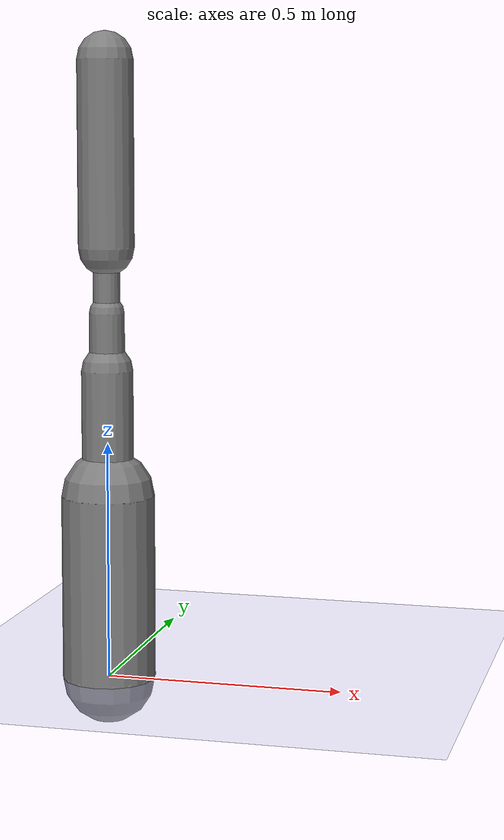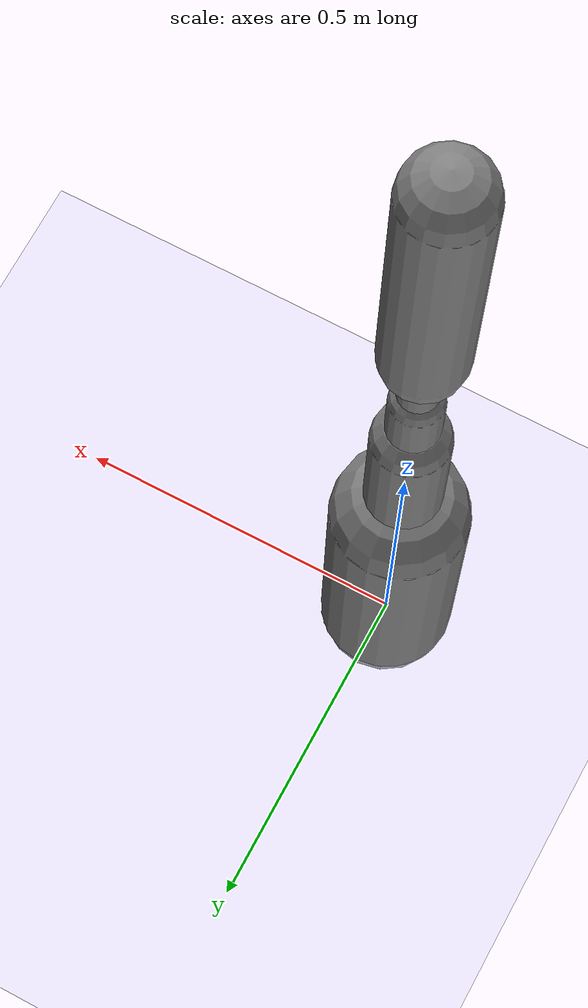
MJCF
<?xml version='1.0' encoding='UTF-8'?>
<mujoco model="robot_model">
  <worldbody>
    <light name="light" pos="0 -3 10" dir="0 0.5 -1" diffuse=".8 .8 .8" specular="0.1 0.1 0.1"/>
    <geom name="floor" type="plane" size="10.0 10.0 0.1" pos="0 0 0" rgba="0.8 0.8 1 1" contype="2" conaffinity="1"/>
    <body name="limb0" pos="0 0 0">
      <geom type="capsule" fromto="0 0 0 0 0 0.39035911731982814" size="0.09803268697124598" density="519.3681168394405" contype="1" conaffinity="2"/>
      <site type="sphere" size="0.01" name="limb0_site0" pos="0 0 0.19911789471627614"/>
      <site type="sphere" size="0.01" name="limb0_site1" pos="0 0 0.2950875408662105"/>
      <site type="sphere" size="0.01" name="limb0_site2" pos="0 0 0.06785541359211436"/>
      <freejoint name="limb0_root"/>
      <body name="limb1" pos="0 0 0.19911789471627614">
        <geom type="capsule" fromto="0 0 0 0 0 0.4441649339515699" size="0.04948670004557682" density="1112.2896626268102" contype="1" conaffinity="2"/>
        <site type="sphere" size="0.01" name="limb1_site0" pos="0 0 0.1769901512206849"/>
        <site type="sphere" size="0.01" name="limb1_site1" pos="0 0 0.08113500948002093"/>
        <body name="limb2" pos="0 0 0.1769901512206849">
          <geom type="capsule" fromto="0 0 0 0 0 0.10581665254440775" size="0.05348785395614184" density="974.5770120745345" contype="1" conaffinity="2"/>
          <joint name="joint_limb1_limb2_0" type="hinge" axis="0 1 0" range="-69.90093079898348 69.90093079898348" damping="5.0"/>
        </body>
        <body name="limb3" pos="0 0 0.08113500948002093">
          <geom type="capsule" fromto="0 0 0 0 0 0.49506834786402915" size="0.03678532303791788" density="732.350866634508" contype="1" conaffinity="2"/>
          <joint name="joint_limb1_limb3_0" type="hinge" axis="0 0 1" range="-98.208106043741 98.208106043741" damping="5.0"/>
        </body>
        <joint name="joint_limb0_limb1_0" type="hinge" axis="1 0 0" range="-35.34545663646472 35.34545663646472" damping="5.0"/>
      </body>
      <body name="limb4" pos="0 0 0.2950875408662105">
        <geom type="capsule" fromto="0 0 0 0 0 0.3600789675341075" size="0.05407429494422454" density="619.3655655626594" contype="1" conaffinity="2"/>
        <site type="sphere" size="0.01" name="limb4_site0" pos="0 0 0.30910742298844884"/>
        <body name="limb5" pos="0 0 0.30910742298844884">
          <geom type="capsule" fromto="0 0 0 0 0 0.3246346816300574" size="0.027985800535247497" density="877.8764988614424" contype="1" conaffinity="2"/>
          <site type="sphere" size="0.01" name="limb5_site0" pos="0 0 0.30592291138675143"/>
          <body name="limb6" pos="0 0 0.30592291138675143">
            <geom type="capsule" fromto="0 0 0 0 0 0.38664313349290746" size="0.05825338637690475" density="1129.6842087872121" contype="1" conaffinity="2"/>
            <joint name="joint_limb5_limb6_0" type="hinge" axis="0 1 0" range="-100.22461563180588 100.22461563180588" damping="5.0"/>
          </body>
          <joint name="joint_limb4_limb5_0" type="hinge" axis="0 0 1" range="-66.666653968561 66.666653968561" damping="5.0"/>
        </body>
        <joint name="joint_limb0_limb4_0" type="hinge" axis="0 1 0" range="-63.54401753206102 63.54401753206102" damping="5.0"/>
      </body>
      <body name="limb7" pos="0 0 0.06785541359211436">
        <geom type="capsule" fromto="0 0 0 0 0 0.20848267310478638" size="0.044649670011882046" density="708.121859381018" contype="1" conaffinity="2"/>
        <site type="sphere" size="0.01" name="limb7_site0" pos="0 0 0.09694283771372672"/>
        <body name="limb8" pos="0 0 0.09694283771372672">
          <geom type="capsule" fromto="0 0 0 0 0 0.2580051719990348" size="0.04067339747056138" density="1032.0122543846398" contype="1" conaffinity="2"/>
          <joint name="joint_limb7_limb8_0" type="hinge" axis="1 0 0" range="-93.08090491481728 93.08090491481728" damping="5.0"/>
        </body>
        <joint name="joint_limb0_limb7_0" type="hinge" axis="1 0 0" range="-96.21716630603876 96.21716630603876" damping="5.0"/>
      </body>
    </body>
  </worldbody>
  <actuator>
    <position name="position_actuator_joint_limb0_limb1_0" joint="joint_limb0_limb1_0" gear="0.838486118417717" inheritrange="1" forcerange="-21.827815527550925 21.827815527550925" forcelimited="true" kp="100.0"/>
    <position name="position_actuator_joint_limb1_limb2_0" joint="joint_limb1_limb2_0" gear="0.7982387005483682" inheritrange="1" forcerange="-7.757964803669655 7.757964803669655" forcelimited="true" kp="100.0"/>
    <position name="position_actuator_joint_limb1_limb3_0" joint="joint_limb1_limb3_0" gear="0.9075785035297382" inheritrange="1" forcerange="-8.469919433129165 8.469919433129165" forcelimited="true" kp="100.0"/>
    <position name="position_actuator_joint_limb0_limb4_0" joint="joint_limb0_limb4_0" gear="1.974145917791248" inheritrange="1" forcerange="-12.294513483594887 12.294513483594887" forcelimited="true" kp="100.0"/>
    <position name="position_actuator_joint_limb4_limb5_0" joint="joint_limb4_limb5_0" gear="1.7448369217414232" inheritrange="1" forcerange="-3.9090952142707183 3.9090952142707183" forcelimited="true" kp="100.0"/>
    <position name="position_actuator_joint_limb5_limb6_0" joint="joint_limb5_limb6_0" gear="0.6835513198932601" inheritrange="1" forcerange="-27.959626287808995 27.959626287808995" forcelimited="true" kp="100.0"/>
    <position name="position_actuator_joint_limb0_limb7_0" joint="joint_limb0_limb7_0" gear="1.7817465554683207" inheritrange="1" forcerange="-5.943255540829112 5.943255540829112" forcelimited="true" kp="100.0"/>
    <position name="position_actuator_joint_limb7_limb8_0" joint="joint_limb7_limb8_0" gear="1.3491558148691103" inheritrange="1" forcerange="-8.373540403358458 8.373540403358458" forcelimited="true" kp="100.0"/>
  </actuator>
</mujoco>
